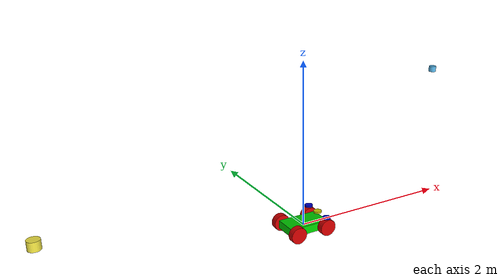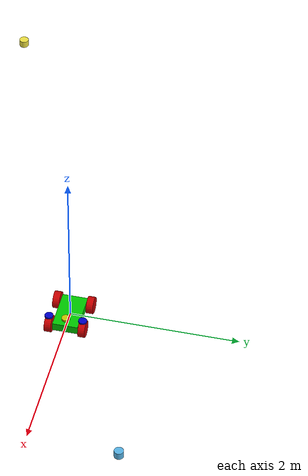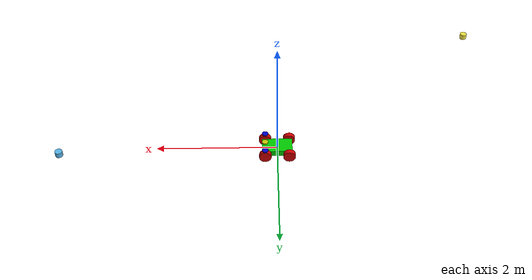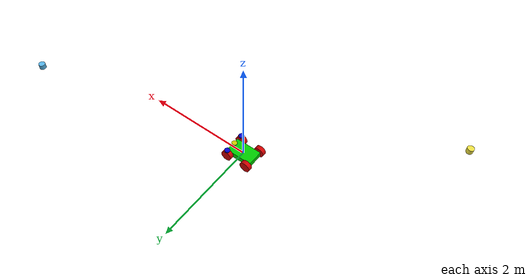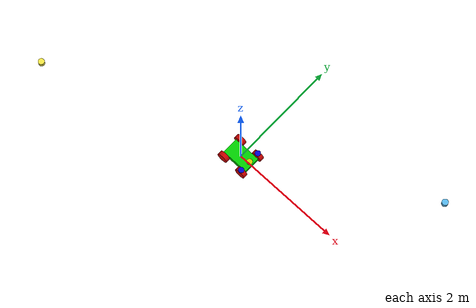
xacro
<?xml version="1.0"?>
<robot name="steer_bot" xmlns:xacro="http://wiki.ros.org/xacro">
  <!-- Include xacro for inertials, materials and wheels -->
  <xacro:include filename="$(find truck_simulation)/urdf/wheel.xacro"/>
  <xacro:arg name="gpu" default="false"/>
  <xacro:property name="gpu" value="$(arg gpu)" />
  <xacro:property name="robot_namespace" value="/steer_bot"/>

  <!-- Gazebo plugins -->
  <gazebo>
    <!-- Load ros_control plugin using the steer_bot_hardware_gazebo
    implementation of the hardware_interface::RobotHW -->
    <plugin name="gazebo_ros_control" filename="libgazebo_ros_control.so">
      <robotNamespace>${robot_namespace}</robotNamespace>
      <robotSimType>steer_bot_hardware_gazebo/SteerBotHardwareGazebo</robotSimType>
      <legacyModeNS>false</legacyModeNS>
    </plugin>
  </gazebo>

  <!-- Math constants -->
  <xacro:property name="deg_to_rad" value="0.01745329251994329577"/>

  <!-- Robot base dimensions -->
  <xacro:property name="base_length" value="0.5" />
  <xacro:property name="base_width" value="0.3" />
  <xacro:property name="base_height" value="0.1" />
  <xacro:property name="base_mass" value="5" />

  <!-- Wheel link dimensions -->
  <xacro:property name="wheel_radius" value="0.1" />
  <xacro:property name="wheel_thickness" value="0.08" />
  <xacro:property name="wheel_mass" value="1" />

  <!-- Steering link dimensions -->
  <xacro:property name="steer_radius" value="0.05" />
  <xacro:property name="steer_thickness" value="0.02" />
  <xacro:property name="steer_mass" value="1" />

  <!-- Axle positions -->
  <xacro:property name="axle_offset" value="0.05" />
  <xacro:property name="steer_offset" value="0.02" />

  <!-- Base link -->
  <link name="base_link">
    <visual>
      <origin xyz="0 0 0" rpy="0 0 0"/>
      <geometry>
        <box size="${base_length} ${base_width} ${base_height}"/>
      </geometry>
      <material name="green" />
    </visual>
    <collision>
      <origin xyz="0 0 0" rpy="0 0 0"/>
      <geometry>
        <box size="${base_length} ${base_width} ${base_height}"/>
      </geometry>
    </collision>
    <xacro:solid_cuboid_inertial
        rpy="0 0 0" xyz="0 0 0"
        mass="${base_mass}"
        x="${base_length}" y="${base_width}" z="${base_height}" />
  </link>

  <!-- Front steer and rear wheel joints required for ackermann_steering_controller -->
  <xacro:front_steer
    name="front"
    parent="base"
    steer_radius="${steer_radius}"
    steer_thickness="${steer_thickness}"
    steer_mass="${steer_mass}"
    base_length="${base_length}"
    base_width="${base_width}"
    axle_offset="${axle_offset}"
    steer_height="${wheel_radius+steer_offset}">
  </xacro:front_steer>

  <xacro:rear_wheel
    name="rear"
    parent="base"
    wheel_radius="${wheel_radius/4}"
    wheel_thickness="${wheel_thickness/2}"
    wheel_mass="${wheel_mass/32}">
    <origin xyz="${-base_length/2+axle_offset} 0 0" rpy="${-90 * deg_to_rad} 0 0"/>
  </xacro:rear_wheel>

  <!-- Steerable front wheels -->
  <xacro:front_wheel_lr
    name="front_right"
    parent="base"
    reflect="-1"
    wheel_radius="${wheel_radius}"
    wheel_thickness="${wheel_thickness}"
    wheel_mass="${wheel_mass}"
    steer_radius="${steer_radius}"
    steer_thickness="${steer_thickness}"
    steer_mass="${steer_mass}"
    base_length="${base_length}"
    base_width="${base_width}"
    axle_offset="${axle_offset}"
    steer_height="${wheel_radius+steer_offset}">
  </xacro:front_wheel_lr>
  <xacro:front_wheel_lr
    name="front_left"
    parent="base"
    reflect="1"
    wheel_radius="${wheel_radius}"
    wheel_thickness="${wheel_thickness}"
    wheel_mass="${wheel_mass}"
    steer_radius="${steer_radius}"
    steer_thickness="${steer_thickness}"
    steer_mass="${steer_mass}"
    base_length="${base_length}"
    base_width="${base_width}"
    axle_offset="${axle_offset}"
    steer_height="${wheel_radius+steer_offset}">
  </xacro:front_wheel_lr>

  <!-- Rear wheels -->
  <xacro:rear_wheel_lr
    name="rear_right"
    parent="base"
    wheel_radius="${wheel_radius}"
    wheel_thickness="${wheel_thickness}"
    wheel_mass="${wheel_mass}">
    <origin xyz="${-base_length/2+axle_offset} ${-base_width/2-axle_offset} 0" rpy="${-90 * deg_to_rad} 0 0"/>
  </xacro:rear_wheel_lr>
  <xacro:rear_wheel_lr
    name="rear_left"
    parent="base"
    wheel_radius="${wheel_radius}"
    wheel_thickness="${wheel_thickness}"
    wheel_mass="${wheel_mass}">
    <origin xyz="${-base_length/2+axle_offset} ${+base_width/2+axle_offset} 0" rpy="${-90 * deg_to_rad} 0 0"/>
  </xacro:rear_wheel_lr>

  <xacro:include filename="$(find robosense_description)/urdf/RS-16.urdf.xacro"/>
  <xacro:RS-16 parent="base_link" name="robosense_F" topic="robosense_F" hz="20" samples="900" gpu="${gpu}">
    <origin xyz="3.165 1.345 1.25" rpy="0.0 3.14 -1.5707" />
  </xacro:RS-16>

  <xacro:include filename="$(find robosense_description)/urdf/RS-16.urdf.xacro"/>
  <xacro:RS-16 parent="base_link" name="robosense_B" topic="robosense_B" hz="20" samples="900" gpu="${gpu}">
    <origin xyz="-3.165 -1.345 1.25" rpy="0.0 3.14 1.5707" />
  </xacro:RS-16>

  <!-- Colour -->
  <gazebo reference="base_link">
    <material>Gazebo/Green</material>
  </gazebo>

</robot>

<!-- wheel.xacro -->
<robot name="wheel" xmlns:xacro="http://wiki.ros.org/xacro">
  <!-- Include xacro for materials and inertials -->
  <xacro:include filename="$(find truck_simulation)/urdf/materials.xacro"/>
  <xacro:include filename="$(find truck_simulation)/urdf/inertials.xacro"/>

  <!-- Properties -->
  <xacro:property name="steer_effort" value="10.0"/>
  <xacro:property name="steer_velocity" value="5.0"/>
  <xacro:property name="steer_limit_deg" value="45.0"/>

  <!-- Bicycle model front steering link (required for steer_drive_controller) -->
  <xacro:macro name="front_steer"
    params="
      name
      parent
      steer_radius
      steer_thickness
      steer_mass
      base_length
      base_width
      axle_offset
      steer_height">
    <link name="${name}_steer_link">
      <visual>
        <origin xyz="0 0 0" rpy="0 0 0"/>
        <geometry>
          <cylinder radius="${steer_radius}" length="${steer_thickness}"/>
        </geometry>
        <material name="yellow" />
      </visual>
      <collision>
        <origin xyz="0 0 0" rpy="0 0 0"/>
        <geometry>
          <cylinder radius="${steer_radius}" length="${steer_thickness}"/>
        </geometry>
      </collision>
      <xacro:solid_cylinder_inertial
          rpy="0 0 0" xyz="0 0 0"
          mass="${steer_mass}"
          radius="${steer_radius}" length="${steer_thickness}" />
    </link>

    <joint name="${name}_steer_joint" type="revolute">
      <parent link="${parent}_link"/>
      <child link="${name}_steer_link"/>
      <origin xyz="${base_length/2-axle_offset} 0 ${steer_height}" rpy="0 0 0"/>
      <axis xyz="0 0 1"/>
      <limit effort="${steer_effort}"
             lower="${-180.0 * deg_to_rad}" upper="${180.0 * deg_to_rad}"
             velocity="${steer_velocity}"/>
    </joint>

    <transmission name="${name}_steer_joint_trans">
      <type>transmission_interface/SimpleTransmission</type>
      <actuator name="${name}_steer_joint_motor">
        <mechanicalReduction>1</mechanicalReduction>
        <hardwareInterface>hardware_interface/PositionJointInterface</hardwareInterface>
      </actuator>
      <joint name="${name}_steer_joint">
        <hardwareInterface>hardware_interface/PositionJointInterface</hardwareInterface>
      </joint>
    </transmission>

    <gazebo reference="${name}_steer_link">
      <material>Gazebo/Yellow</material>
    </gazebo>
  </xacro:macro>

  <!-- Car steering model front (steerable) wheel links (left/right) -->
  <xacro:macro name="front_wheel_lr"
    params="
      name
      parent
      reflect
      wheel_radius
      wheel_thickness
      wheel_mass
      steer_radius
      steer_thickness
      steer_mass
      base_length
      base_width
      axle_offset
      steer_height">
    <link name="${name}_steer_link">
      <visual>
        <origin xyz="0 0 0" rpy="0 0 0"/>
        <geometry>
          <cylinder radius="${steer_radius}" length="${steer_thickness}"/>
        </geometry>
        <material name="blue" />
      </visual>
      <collision>
        <origin xyz="0 0 0" rpy="0 0 0"/>
        <geometry>
          <cylinder radius="${steer_radius}" length="${steer_thickness}"/>
        </geometry>
      </collision>
      <xacro:solid_cylinder_inertial
          rpy="0 0 0" xyz="0 0 0"
          mass="${steer_mass}"
          radius="${steer_radius}" length="${steer_thickness}" />
    </link>

    <joint name="${name}_steer_joint" type="revolute">
      <parent link="${parent}_link"/>
      <child link="${name}_steer_link"/>
      <origin xyz="${base_length/2-axle_offset} ${reflect*(base_width/2+axle_offset)} ${steer_height}" rpy="0 0 0"/>
      <axis xyz="0 0 1"/>
      <limit effort="${steer_effort}"
             lower="${steer_limit_deg * deg_to_rad * -1.0}" upper="${steer_limit_deg * deg_to_rad}"
             velocity="${steer_velocity}"/>
    </joint>

    <link name="${name}_wheel_link">
      <visual>
        <origin xyz="0 0 0" rpy="0 0 0"/>
        <geometry>
          <cylinder radius="${wheel_radius}" length="${wheel_thickness}"/>
        </geometry>
        <material name="red" />
      </visual>
      <collision>
        <origin xyz="0 0 0" rpy="0 0 0"/>
        <geometry>
          <cylinder radius="${wheel_radius}" length="${wheel_thickness}"/>
        </geometry>
      </collision>
      <xacro:solid_cylinder_inertial
          rpy="0 0 0" xyz="0 0 0"
          mass="${wheel_mass}"
          radius="${wheel_radius}" length="${wheel_thickness}" />
    </link>

    <joint name="${name}_wheel_joint" type="continuous">
      <parent link="${name}_steer_link"/>
      <child link="${name}_wheel_link"/>
      <origin xyz="0 0 ${-steer_height}" rpy="${-90 * deg_to_rad} 0 0"/>
      <axis xyz="0 0 1"/>
    </joint>

    <transmission name="${name}_steer_joint_trans">
      <type>transmission_interface/SimpleTransmission</type>
      <actuator name="${name}_steer_joint_motor">
        <mechanicalReduction>1</mechanicalReduction>
        <hardwareInterface>hardware_interface/PositionJointInterface</hardwareInterface>
      </actuator>
      <joint name="${name}_steer_joint">
        <hardwareInterface>hardware_interface/PositionJointInterface</hardwareInterface>
      </joint>
    </transmission>

    <transmission name="${name}_wheel_joint_trans">
      <type>transmission_interface/SimpleTransmission</type>
      <actuator name="${name}_wheel_joint_motor">
        <mechanicalReduction>1</mechanicalReduction>
        <hardwareInterface>hardware_interface/VelocityJointInterface</hardwareInterface>
      </actuator>
      <joint name="${name}_wheel_joint">
        <hardwareInterface>hardware_interface/VelocityJointInterface</hardwareInterface>
      </joint>
    </transmission>

    <gazebo reference="${name}_steer_link">
      <material>Gazebo/Blue</material>
    </gazebo>

    <gazebo reference="${name}_wheel_link">
      <material>Gazebo/Red</material>
    </gazebo>
  </xacro:macro>

  <!-- Bicycle model rear wheel link (required for steer_drive_controller) -->
  <xacro:macro name="rear_wheel"
    params="
      name
      parent
      wheel_radius
      wheel_thickness
      wheel_mass
      *origin">
    <link name="${name}_wheel_link">
      <visual>
        <origin xyz="0 0 0" rpy="0 0 0"/>
        <geometry>
          <cylinder radius="${wheel_radius}" length="${wheel_thickness}"/>
        </geometry>
        <material name="yellow" />
      </visual>
      <collision>
        <origin xyz="0 0 0" rpy="0 0 0"/>
        <geometry>
          <cylinder radius="${wheel_radius}" length="${wheel_thickness}"/>
        </geometry>
      </collision>
      <xacro:solid_cylinder_inertial
          rpy="0 0 0" xyz="0 0 0"
          mass="${wheel_mass}"
          radius="${wheel_radius}" length="${wheel_thickness}" />
    </link>

    <joint name="${name}_wheel_joint" type="continuous">
      <parent link="${parent}_link"/>
      <child link="${name}_wheel_link"/>
      <xacro:insert_block name="origin"/>
      <axis xyz="0 0 1"/>
    </joint>

    <transmission name="${name}_wheel_joint_trans">
      <type>transmission_interface/SimpleTransmission</type>
      <actuator name="${name}_wheel_joint_motor">
        <mechanicalReduction>1</mechanicalReduction>
        <hardwareInterface>hardware_interface/VelocityJointInterface</hardwareInterface>
      </actuator>
      <joint name="${name}_wheel_joint">
        <hardwareInterface>hardware_interface/VelocityJointInterface</hardwareInterface>
      </joint>
    </transmission>

    <gazebo reference="${name}_wheel_link">
      <material>Gazebo/Yellow</material>
    </gazebo>
  </xacro:macro>

  <!-- Bicycle model front wheel link (passive - no transmission) -->
  <xacro:macro name="front_wheel"
    params="
      name
      parent
      wheel_radius
      wheel_thickness
      wheel_mass
      *origin">
    <link name="${name}_wheel_link">
      <visual>
        <origin xyz="0 0 0" rpy="0 0 0"/>
        <geometry>
          <cylinder radius="${wheel_radius}" length="${wheel_thickness}"/>
        </geometry>
        <material name="yellow" />
      </visual>
      <collision>
        <origin xyz="0 0 0" rpy="0 0 0"/>
        <geometry>
          <cylinder radius="${wheel_radius}" length="${wheel_thickness}"/>
        </geometry>
      </collision>
      <xacro:solid_cylinder_inertial
          rpy="0 0 0" xyz="0 0 0"
          mass="${wheel_mass}"
          radius="${wheel_radius}" length="${wheel_thickness}" />
    </link>

    <joint name="${name}_wheel_joint" type="continuous">
      <parent link="${parent}_link"/>
      <child link="${name}_wheel_link"/>
      <xacro:insert_block name="origin"/>
      <axis xyz="0 0 1"/>
    </joint>

    <gazebo reference="${name}_wheel_link">
      <material>Gazebo/Yellow</material>
    </gazebo>

    <gazebo reference="${name}_wheel_joint">
      <provideFeedback>true</provideFeedback>
    </gazebo>
  </xacro:macro>

  <!-- Car steering model rear wheel links (left/right) -->
  <xacro:macro name="rear_wheel_lr"
    params="
      name
      parent
      wheel_radius
      wheel_thickness
      wheel_mass
      *origin">
    <link name="${name}_wheel_link">
      <visual>
        <origin xyz="0 0 0" rpy="0 0 0"/>
        <geometry>
          <cylinder radius="${wheel_radius}" length="${wheel_thickness}"/>
        </geometry>
        <material name="red" />
      </visual>
      <collision>
        <origin xyz="0 0 0" rpy="0 0 0"/>
        <geometry>
          <cylinder radius="${wheel_radius}" length="${wheel_thickness}"/>
        </geometry>
      </collision>
      <xacro:solid_cylinder_inertial
          rpy="0 0 0" xyz="0 0 0"
          mass="${wheel_mass}"
          radius="${wheel_radius}" length="${wheel_thickness}" />
    </link>

    <joint name="${name}_wheel_joint" type="continuous">
      <parent link="${parent}_link"/>
      <child link="${name}_wheel_link"/>
      <xacro:insert_block name="origin"/>
      <axis xyz="0 0 1"/>
    </joint>

    <transmission name="${name}_wheel_joint_trans">
      <type>transmission_interface/SimpleTransmission</type>
      <actuator name="${name}_wheel_joint_motor">
        <mechanicalReduction>1</mechanicalReduction>
        <hardwareInterface>hardware_interface/VelocityJointInterface</hardwareInterface>
      </actuator>
      <joint name="${name}_wheel_joint">
        <hardwareInterface>hardware_interface/VelocityJointInterface</hardwareInterface>
      </joint>
    </transmission>

    <gazebo reference="${name}_wheel_link">
      <material>Gazebo/Red</material>
    </gazebo>
  </xacro:macro>
</robot>

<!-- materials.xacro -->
<!--  xacro macros for robot materials.
 -->
<robot name="materials" xmlns:xacro="http://wiki.ros.org/xacro">
   <material name="red">
        <color rgba="0.8 0 0 1"/>
    </material>

    <material name="green">
        <color rgba="0 0.8 0 1"/>
    </material>

    <material name="blue">
        <color rgba="0 0 0.8 1"/>
    </material>

    <material name="yellow">
        <color rgba="0.8 0.8 0 1"/>
    </material>

    <material name="orange">
        <color rgba="0.8 0.25 0 1"/>
    </material>

    <material name="dark_gray">
        <color rgba="0.5 0.5 0.5 1"/>
    </material>

    <material name="gray">
        <color rgba="0.753 0.753 0.753 1"/>
    </material>

    <material name="silver">
        <color rgba="0.88 0.88 0.88 1"/>
    </material>

    <material name="Black">
        <color rgba="${0/255} ${0/255} ${0/255} 0.4"/>
    </material>

    <material name="White">
        <color rgba="${255/255} ${255/255} ${255/255} 1.0"/>
    </material>

    <material name="Red">
        <color rgba="${255/255} ${0/255} ${0/255} 1.0"/>
    </material>

    <material name="Grey">
        <color rgba="${50/255} ${50/255} ${50/255} 1.0"/>
    </material>

    <material name="Orange">
        <color rgba="${255/255} ${130/255} ${40/255} 1.0"/>
    </material>
    <material name="Yellow">
        <color rgba="${255/255} ${255/255} ${0/255} 0.4"/>
    </material>
</robot>

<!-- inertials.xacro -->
<!--  xacro macros for inertials.

    Define xacro macros for math constants and inertials:

    - solid cuboid
    - solid cylinder
    - null (a placeholder inertial for logical link elements)
 -->
<robot name="inertials" xmlns:xacro="http://wiki.ros.org/xacro">

    <!-- Math constants -->
    <xacro:property name="math_pi"        value="3.141592653589793" />
    <xacro:property name="math_pi_over_2" value="1.5707963267948966" />
    <xacro:property name="math_pi_over_4" value="0.785398163397448" />

    <!-- Inertial for solid cuboid with dimensions x y z  -->
    <xacro:macro name="solid_cuboid_inertial" params="rpy xyz mass x y z">
        <inertial>
            <origin rpy="${rpy}" xyz="${xyz}"/>
            <mass value="${mass}" />
            <inertia
                ixx="${mass * (y * y + z * z) / 12.0}" ixy="0.0" ixz="0.0"
                iyy="${mass * (x * x + z * z) / 12.0}" iyz="0.0"
                izz="${mass * (x * x + y * y) / 12.0}" />
        </inertial>
    </xacro:macro>

    <!-- Inertial for solid cylinder with radius and length aligned to z-axis  -->
    <xacro:macro name="solid_cylinder_inertial" params="rpy xyz mass radius length">
        <inertial>
            <origin rpy="${rpy}" xyz="${xyz}"/>
            <mass value="${mass}" />
            <inertia
                ixx="${mass * (3.0 * radius * radius + length * length) / 12.0}" ixy="0.0" ixz="0.0"
                iyy="${mass * (3.0 * radius * radius + length * length) / 12.0}" iyz="0.0"
                izz="${mass * (radius * radius) / 2.0}" />
        </inertial>
    </xacro:macro>

    <!-- A null inertial - used in placeholder links to esure the model will work in Gazebo -->
    <xacro:macro name="null_inertial">
        <inertial>
            <mass value="0.001"/>
            <inertia ixx="0.001" ixy="0" ixz="0" iyy="0.001" iyz="0" izz="0.001"/>
        </inertial>
    </xacro:macro>

    <!-- Define intertial property macros  -->
    <xacro:macro name="box_inertia" params="m w h d">
        <inertial>
            <origin xyz="0 0 0" rpy="${pi/2} 0 ${pi/2}"/>
            <mass value="${m}"/>
            <inertia ixx="${(m/12) * (h*h + d*d)}" ixy="0.0" ixz="0.0" iyy="${(m/12) * (w*w + d*d)}" iyz="0.0" izz="${(m/12) * (w*w + h*h)}"/>
        </inertial>
    </xacro:macro>
</robot>

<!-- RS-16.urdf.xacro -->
<robot xmlns:xacro="http://www.ros.org/wiki/xacro" name="RS-16">
  <xacro:property name="M_PI" value="3.1415926535897931" />
  <xacro:macro name="RS-16" params="*origin parent:=base_link name:=robosense topic:=/robosense_points hz:=20 lasers:=16 samples:=360 collision_range:=0.4 min_range:=0.4 max_range:=150.0 noise:=0.008 min_angle:=-${M_PI} max_angle:=${M_PI} gpu:=false">

    <joint name="${name}_base_mount_joint" type="fixed">
      <xacro:insert_block name="origin" />
      <parent link="${parent}"/>
      <child link="${name}_base_link"/>
    </joint>

    <link name="${name}_base_link">
      <inertial>
        <mass value="0.87"/>
        <origin xyz="0 0 0"/>
        <inertia ixx="0.001094695" ixy="0" ixz="0"
          iyy="0.001094695" iyz="0"
          izz="0.001245079"/>
      </inertial>
      <visual>
        <origin rpy="0 0 0" xyz="0 0 0"/>
        <geometry>
          <cylinder radius="0.0535" length="0.0817"/>
        </geometry>
      </visual>
      <collision>
        <origin rpy="0 0 0" xyz="0 0 0"/>
        <geometry>
          <cylinder radius="0.0535" length="0.0817"/>
        </geometry>
      </collision>
    </link>

    <joint name="${name}_base_scan_joint" type="fixed" >
      <origin xyz="0 0 0.039" rpy="0 0 0" />
      <parent link="${name}_base_link" />
      <child link="${name}"/>
    </joint>

    <link name="${name}">
      <inertial>
        <mass value="0.01"/>
        <origin xyz="0 0 0"/>
        <inertia ixx="1e-7" ixy="0" ixz="0" iyy="1e-7" iyz="0" izz="1e-7"/>
      </inertial>
    </link>

    <!-- Gazebo requires the robosense_gazebo_plugins package -->
    <gazebo reference="${name}">
      <xacro:if value="${gpu}">
        <sensor type="gpu_ray" name="${name}-RS16">
          <pose>0 0 0 0 0 0</pose>
          <visualize>false</visualize>
          <update_rate>${hz}</update_rate>
          <ray>
            <scan>
              <horizontal>
                <samples>${samples}</samples>
                <resolution>1</resolution>
                <min_angle>${min_angle}</min_angle>
                <max_angle>${max_angle}</max_angle>
              </horizontal>
              <vertical>
                <samples>${lasers}</samples>
                <resolution>1</resolution>
                <min_angle>-${15.0*M_PI/180.0}</min_angle>
                <max_angle> ${15.0*M_PI/180.0}</max_angle>
              </vertical>
            </scan>
            <range>
              <min>${collision_range}</min>
              <max>${max_range}</max>
              <resolution>0.001</resolution>
            </range>
            <noise>
              <type>gaussian</type>
              <mean>0.0</mean>
              <stddev>0.0</stddev>
            </noise>
          </ray>
          <plugin name="gazebo_ros_laser_controller" filename="libgazebo_ros_robosense_laser.so">
            <ros>
              <namespace>/${name}</namespace>
              <remapping>~/out:=${topic}</remapping>
            </ros>
            <tf_prefix>${tf_prefix}</tf_prefix>
            <frameName>${name}</frameName>
            <min_range>${min_range}</min_range>
            <max_range>${max_range}</max_range>
            <gaussian_noise>${noise}</gaussian_noise>
          </plugin>
        </sensor>
      </xacro:if>
      <xacro:unless value="${gpu}">
        <sensor type="ray" name="${name}-RS16">
          <pose>0 0 0 0 0 0</pose>
          <always_on>true</always_on>
          <visualize>false</visualize>
          <update_rate>${hz}</update_rate>
          <ray>
            <scan>
              <horizontal>
                <samples>${samples}</samples>
                <resolution>1</resolution>
                <min_angle>${min_angle}</min_angle>
                <max_angle>${max_angle}</max_angle>
              </horizontal>
              <vertical>
                <samples>${lasers}</samples>
                <resolution>1</resolution>
                <min_angle>-${15.0*M_PI/180.0}</min_angle>
                <max_angle> ${15.0*M_PI/180.0}</max_angle>
              </vertical>
            </scan>
            <range>
              <min>${collision_range}</min>
              <max>${max_range+1}</max>
              <resolution>0.001</resolution>
            </range>
            <noise>
              <type>gaussian</type>
              <mean>0.0</mean>
              <stddev>0.0</stddev>
            </noise>
          </ray>
          <plugin name="gazebo_ros_laser_controller" filename="libgazebo_ros_robosense_laser.so">
            <ros>
              <namespace>/${name}</namespace>
              <remapping>~/out:=${topic}</remapping>
            </ros>
            <frameName>${name}</frameName>
            <min_range>${min_range}</min_range>
            <max_range>${max_range}</max_range>
            <gaussian_noise>${noise}</gaussian_noise>
          </plugin>
        </sensor>
      </xacro:unless>
    </gazebo>

  </xacro:macro>
</robot>
